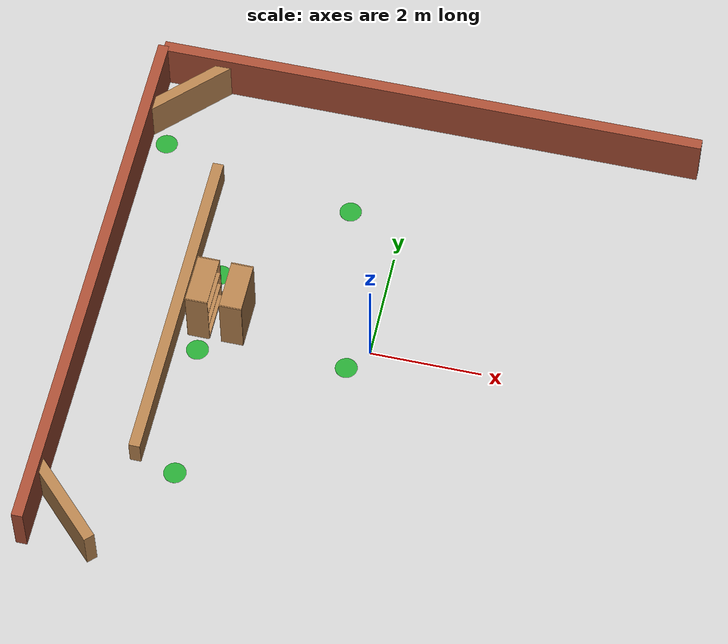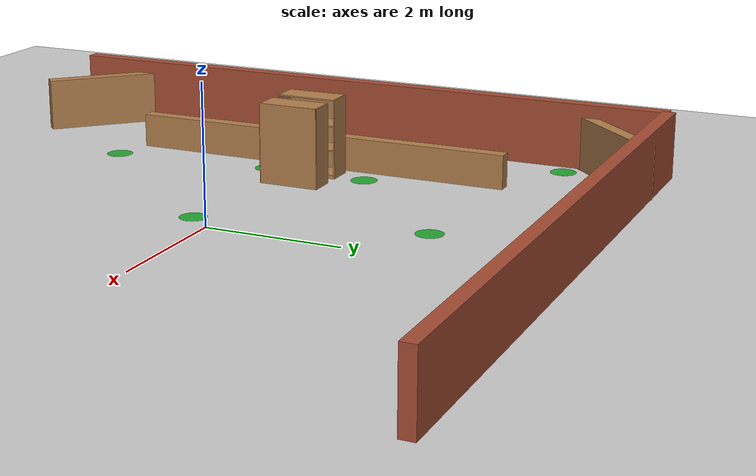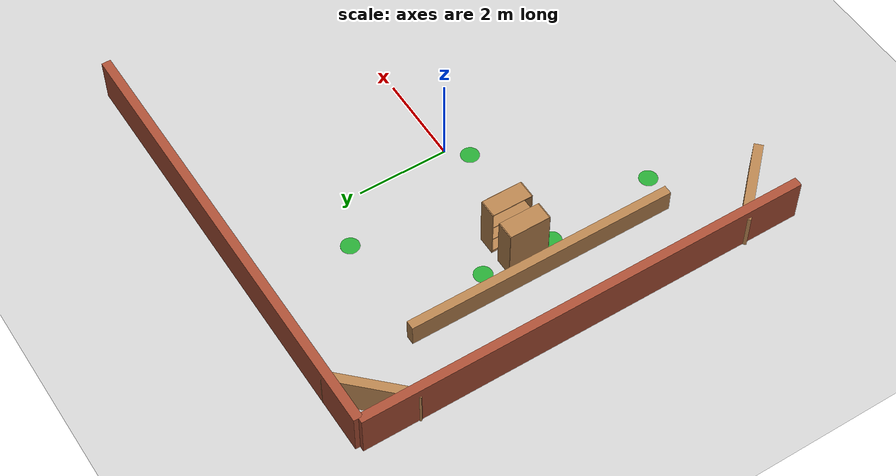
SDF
<sdf version="1.7">
 <world name="default">
  <model name="ground_plane">
   <static>1</static>
   <link name="link">
    <collision name="collision">
     <geometry><plane><normal>0 0 1</normal><size>100 100</size></plane></geometry>
     <surface><friction><ode><mu>100</mu><mu2>50</mu2></ode></friction></surface>
    </collision>
    <visual name="visual">
     <cast_shadows>0</cast_shadows>
     <geometry><plane><normal>0 0 1</normal><size>100 100</size></plane></geometry>
     <material>
      <script><uri>file://media/materials/scripts/gazebo.material</uri><name>Gazebo/Grey</name></script>
     </material>
    </visual>
   </link>
  </model>
  <model name="brick_wall">
   <link name="link_4">
    <inertial><mass>1</mass></inertial>
    <visual name="visual">
     <geometry><box><size>10 0.2 1</size></box></geometry>
     <material>
      <lighting>1</lighting>
      <script><uri>file://media/materials/scripts/gazebo.material</uri><name>Gazebo/Bricks</name></script>
      <shader type="pixel"><normal_map>__default__</normal_map></shader>
      <ambient>1 1 1 1</ambient>
      <diffuse>1 1 1 1</diffuse>
      <specular>0.2 0.2 0.2 1</specular>
      <emissive>0 0 0 1</emissive>
     </material>
    </visual>
    <collision name="collision"><geometry><box><size>10 0.2 1</size></box></geometry></collision>
   </link>
   <static>1</static>
   <pose>-0 5 0.5 0 -0 0</pose>
  </model>
  <model name="brick_wall_1">
   <link name="link_4">
    <inertial><mass>1</mass></inertial>
    <visual name="visual">
     <geometry><box><size>10 0.2 1</size></box></geometry>
     <material>
      <lighting>1</lighting>
      <script><uri>file://media/materials/scripts/gazebo.material</uri><name>Gazebo/Bricks</name></script>
      <shader type="pixel"><normal_map>__default__</normal_map></shader>
      <ambient>1 1 1 1</ambient>
      <diffuse>1 1 1 1</diffuse>
      <specular>0.2 0.2 0.2 1</specular>
      <emissive>0 0 0 1</emissive>
     </material>
    </visual>
    <collision name="collision"><geometry><box><size>10 0.2 1</size></box></geometry></collision>
   </link>
   <static>1</static>
   <pose>-5 0 0.5 0 0 -1.56843</pose>
  </model>
  <model name="wood_corner_0">
   <link name="link_5">
    <inertial><mass>0</mass></inertial>
    <pose>-0 0 0 0 -0 0.785</pose>
    <visual name="visual">
     <geometry><box><size>0.2 1.9 1</size></box></geometry>
     <material>
      <lighting>1</lighting>
      <script><uri>file://media/materials/scripts/gazebo.material</uri><name>Gazebo/Wood</name></script>
      <shader type="pixel"><normal_map>__default__</normal_map></shader>
      <ambient>0.3 0.3 0.3 1</ambient>
      <diffuse>0.7 0.7 0.7 1</diffuse>
      <specular>0.01 0.01 0.01 1</specular>
      <emissive>0 0 0 1</emissive>
     </material>
    </visual>
    <collision name="collision"><geometry><box><size>0.2 1.9 1</size></box></geometry></collision>
   </link>
   <static>1</static>
   <pose>-4.40116 4.36048 0.3 0 0 -1.56218</pose>
  </model>
  <model name="wood_corner_1">
   <link name="link_5">
    <inertial><mass>0</mass></inertial>
    <pose>-0 0 0 0 -0 0.785</pose>
    <visual name="visual">
     <geometry><box><size>0.2 1.9 1</size></box></geometry>
     <material>
      <lighting>1</lighting>
      <script><uri>file://media/materials/scripts/gazebo.material</uri><name>Gazebo/Wood</name></script>
      <shader type="pixel"><normal_map>__default__</normal_map></shader>
      <ambient>0.3 0.3 0.3 1</ambient>
      <diffuse>0.7 0.7 0.7 1</diffuse>
      <specular>0.01 0.01 0.01 1</specular>
      <emissive>0 0 0 1</emissive>
     </material>
    </visual>
    <collision name="collision"><geometry><box><size>0.2 1.9 1</size></box></geometry></collision>
   </link>
   <static>1</static>
   <pose>-4.40116 -4.36048 0.3 0 -0 0</pose>
  </model>
  <model name="parting_wood_wall">
   <link name="link_0">
    <visual name="visual">
     <geometry><box><size>0.2 6 1</size></box></geometry>
     <material>
      <lighting>1</lighting>
      <script><uri>file://media/materials/scripts/gazebo.material</uri><name>Gazebo/Wood</name></script>
      <shader type="pixel"><normal_map>__default__</normal_map></shader>
      <ambient>1 1 1 1</ambient>
      <diffuse>1 1 1 1</diffuse>
      <specular>0.2 0.2 0.2 1</specular>
      <emissive>0 0 0 1</emissive>
     </material>
    </visual>
    <collision name="collision"><geometry><box><size>0.2 6 1</size></box></geometry></collision>
   </link>
   <static>1</static>
   <pose>-3.5 0 0 0 -0 0</pose>
  </model>
  <model name="bookshelfs_0">
   <model name="bookshelf">
    <static>1</static>
    <link name="link">
     <inertial><mass>1</mass></inertial>
     <collision name="back">
      <pose>0 0.005 0.6 0 -0 0</pose>
      <geometry><box><size>0.9 0.01 1.2</size></box></geometry>
     </collision>
     <visual name="visual1">
      <pose>0 0.005 0.6 0 -0 0</pose>
      <geometry><box><size>0.9 0.01 1.2</size></box></geometry>
      <material>
       <script><uri>file://media/materials/scripts/gazebo.material</uri><name>Gazebo/Wood</name></script>
      </material>
     </visual>
     <collision name="left_side">
      <pose>0.45 -0.195 0.6 0 -0 0</pose>
      <geometry><box><size>0.02 0.4 1.2</size></box></geometry>
     </collision>
     <visual name="visual2">
      <pose>0.45 -0.195 0.6 0 -0 0</pose>
      <geometry><box><size>0.02 0.4 1.2</size></box></geometry>
      <material>
       <script><uri>file://media/materials/scripts/gazebo.material</uri><name>Gazebo/Wood</name></script>
      </material>
     </visual>
     <collision name="right_side">
      <pose>-0.45 -0.195 0.6 0 -0 0</pose>
      <geometry><box><size>0.02 0.4 1.2</size></box></geometry>
     </collision>
     <visual name="visual3">
      <pose>-0.45 -0.195 0.6 0 -0 0</pose>
      <geometry><box><size>0.02 0.4 1.2</size></box></geometry>
      <material>
       <script><uri>file://media/materials/scripts/gazebo.material</uri><name>Gazebo/Wood</name></script>
      </material>
     </visual>
     <collision name="bottom">
      <pose>0 -0.195 0.03 0 -0 0</pose>
      <geometry><box><size>0.88 0.4 0.06</size></box></geometry>
     </collision>
     <visual name="visual4">
      <pose>0 -0.195 0.03 0 -0 0</pose>
      <geometry><box><size>0.88 0.4 0.06</size></box></geometry>
      <material>
       <script><uri>file://media/materials/scripts/gazebo.material</uri><name>Gazebo/Wood</name></script>
      </material>
     </visual>
     <collision name="top">
      <pose>0 -0.195 1.19 0 -0 0</pose>
      <geometry><box><size>0.88 0.4 0.02</size></box></geometry>
     </collision>
     <visual name="visual5">
      <pose>0 -0.195 1.19 0 -0 0</pose>
      <geometry><box><size>0.88 0.4 0.02</size></box></geometry>
      <material>
       <script><uri>file://media/materials/scripts/gazebo.material</uri><name>Gazebo/Wood</name></script>
      </material>
     </visual>
     <collision name="low_shelf">
      <pose>0 -0.195 0.43 0 -0 0</pose>
      <geometry><box><size>0.88 0.4 0.02</size></box></geometry>
     </collision>
     <visual name="visual6">
      <pose>0 -0.195 0.43 0 -0 0</pose>
      <geometry><box><size>0.88 0.4 0.02</size></box></geometry>
      <material>
       <script><uri>file://media/materials/scripts/gazebo.material</uri><name>Gazebo/Wood</name></script>
      </material>
     </visual>
     <collision name="high_shelf">
      <pose>0 -0.195 0.8 0 -0 0</pose>
      <geometry><box><size>0.88 0.4 0.02</size></box></geometry>
     </collision>
     <visual name="visual7">
      <pose>0 -0.195 0.8 0 -0 0</pose>
      <geometry><box><size>0.88 0.4 0.02</size></box></geometry>
      <material>
       <script><uri>file://media/materials/scripts/gazebo.material</uri><name>Gazebo/Wood</name></script>
      </material>
     </visual>
    </link>
    <pose>-0 0.5 0 0 -0 0</pose>
   </model>
   <model name="bookshelf_0">
    <static>1</static>
    <link name="link">
     <inertial><mass>1</mass></inertial>
     <collision name="back">
      <pose>0 0.005 0.6 0 -0 0</pose>
      <geometry><box><size>0.9 0.01 1.2</size></box></geometry>
     </collision>
     <visual name="visual1">
      <pose>0 0.005 0.6 0 -0 0</pose>
      <geometry><box><size>0.9 0.01 1.2</size></box></geometry>
      <material>
       <script><uri>file://media/materials/scripts/gazebo.material</uri><name>Gazebo/Wood</name></script>
      </material>
     </visual>
     <collision name="left_side">
      <pose>0.45 -0.195 0.6 0 -0 0</pose>
      <geometry><box><size>0.02 0.4 1.2</size></box></geometry>
     </collision>
     <visual name="visual2">
      <pose>0.45 -0.195 0.6 0 -0 0</pose>
      <geometry><box><size>0.02 0.4 1.2</size></box></geometry>
      <material>
       <script><uri>file://media/materials/scripts/gazebo.material</uri><name>Gazebo/Wood</name></script>
      </material>
     </visual>
     <collision name="right_side">
      <pose>-0.45 -0.195 0.6 0 -0 0</pose>
      <geometry><box><size>0.02 0.4 1.2</size></box></geometry>
     </collision>
     <visual name="visual3">
      <pose>-0.45 -0.195 0.6 0 -0 0</pose>
      <geometry><box><size>0.02 0.4 1.2</size></box></geometry>
      <material>
       <script><uri>file://media/materials/scripts/gazebo.material</uri><name>Gazebo/Wood</name></script>
      </material>
     </visual>
     <collision name="bottom">
      <pose>0 -0.195 0.03 0 -0 0</pose>
      <geometry><box><size>0.88 0.4 0.06</size></box></geometry>
     </collision>
     <visual name="visual4">
      <pose>0 -0.195 0.03 0 -0 0</pose>
      <geometry><box><size>0.88 0.4 0.06</size></box></geometry>
      <material>
       <script><uri>file://media/materials/scripts/gazebo.material</uri><name>Gazebo/Wood</name></script>
      </material>
     </visual>
     <collision name="top">
      <pose>0 -0.195 1.19 0 -0 0</pose>
      <geometry><box><size>0.88 0.4 0.02</size></box></geometry>
     </collision>
     <visual name="visual5">
      <pose>0 -0.195 1.19 0 -0 0</pose>
      <geometry><box><size>0.88 0.4 0.02</size></box></geometry>
      <material>
       <script><uri>file://media/materials/scripts/gazebo.material</uri><name>Gazebo/Wood</name></script>
      </material>
     </visual>
     <collision name="low_shelf">
      <pose>0 -0.195 0.43 0 -0 0</pose>
      <geometry><box><size>0.88 0.4 0.02</size></box></geometry>
     </collision>
     <visual name="visual6">
      <pose>0 -0.195 0.43 0 -0 0</pose>
      <geometry><box><size>0.88 0.4 0.02</size></box></geometry>
      <material>
       <script><uri>file://media/materials/scripts/gazebo.material</uri><name>Gazebo/Wood</name></script>
      </material>
     </visual>
     <collision name="high_shelf">
      <pose>0 -0.195 0.8 0 -0 0</pose>
      <geometry><box><size>0.88 0.4 0.02</size></box></geometry>
     </collision>
     <visual name="visual7">
      <pose>0 -0.195 0.8 0 -0 0</pose>
      <geometry><box><size>0.88 0.4 0.02</size></box></geometry>
      <material>
       <script><uri>file://media/materials/scripts/gazebo.material</uri><name>Gazebo/Wood</name></script>
      </material>
     </visual>
    </link>
    <pose>0 -0.5 0 0 -0 3.14159</pose>
   </model>
   <static>1</static>
   <pose>-2.73623 0.117823 0 0 -0 -1.57215</pose>
  </model>
  <model name="goal_pad">
   <link name="link_0">
    <visual name="visual">
     <geometry><cylinder><radius>0.2</radius><length>0.001</length></cylinder></geometry>
     <material>
      <lighting>1</lighting>
      <script><uri>file://media/materials/scripts/gazebo.material</uri><name>Gazebo/Green</name></script>
      <shader type="pixel"><normal_map>__default__</normal_map></shader>
      <ambient>0 1 0 1</ambient>
      <diffuse>0 1 0 1</diffuse>
      <specular>0.1 0.1 0.1 1</specular>
      <emissive>0 0 0 1</emissive>
     </material>
    </visual>
    <collision name="collision">
     <geometry><cylinder><radius>0.2</radius><length>0.001</length></cylinder></geometry>
    </collision>
   </link>
   <static>1</static>
   <pose>-4.62856 3.53907 0 0 -0 0</pose>
  </model>
  <model name="goal_pad_1">
   <link name="link_0">
    <visual name="visual">
     <geometry><cylinder><radius>0.2</radius><length>0.001</length></cylinder></geometry>
     <material>
      <lighting>1</lighting>
      <script><uri>file://media/materials/scripts/gazebo.material</uri><name>Gazebo/Green</name></script>
      <shader type="pixel"><normal_map>__default__</normal_map></shader>
      <ambient>0 1 0 1</ambient>
      <diffuse>0 1 0 1</diffuse>
      <specular>0.1 0.1 0.1 1</specular>
      <emissive>0 0 0 1</emissive>
     </material>
    </visual>
    <collision name="collision">
     <geometry><cylinder><radius>0.2</radius><length>0.001</length></cylinder></geometry>
    </collision>
   </link>
   <static>1</static>
   <pose>-2.77242 -3.09679 0 0 -0 0</pose>
  </model>
  <model name="goal_pad_2">
   <link name="link_0">
    <visual name="visual">
     <geometry><cylinder><radius>0.2</radius><length>0.001</length></cylinder></geometry>
     <material>
      <lighting>1</lighting>
      <script><uri>file://media/materials/scripts/gazebo.material</uri><name>Gazebo/Green</name></script>
      <shader type="pixel"><normal_map>__default__</normal_map></shader>
      <ambient>0 1 0 1</ambient>
      <diffuse>0 1 0 1</diffuse>
      <specular>0.1 0.1 0.1 1</specular>
      <emissive>0 0 0 1</emissive>
     </material>
    </visual>
    <collision name="collision">
     <geometry><cylinder><radius>0.2</radius><length>0.001</length></cylinder></geometry>
    </collision>
   </link>
   <static>1</static>
   <pose>-2.97355 1.00 0 0 -0 0</pose>
  </model>
  <model name="goal_pad_3">
   <link name="link_0">
    <visual name="visual">
     <geometry><cylinder><radius>0.2</radius><length>0.001</length></cylinder></geometry>
     <material>
      <lighting>1</lighting>
      <script><uri>file://media/materials/scripts/gazebo.material</uri><name>Gazebo/Green</name></script>
      <shader type="pixel"><normal_map>__default__</normal_map></shader>
      <ambient>0 1 0 1</ambient>
      <diffuse>0 1 0 1</diffuse>
      <specular>0.1 0.1 0.1 1</specular>
      <emissive>0 0 0 1</emissive>
     </material>
    </visual>
    <collision name="collision">
     <geometry><cylinder><radius>0.2</radius><length>0.001</length></cylinder></geometry>
    </collision>
   </link>
   <static>1</static>
   <pose>-3.00 -0.604 0 0 -0 0</pose>
  </model>
  <model name="goal_pad_6">
   <link name="link_0">
    <visual name="visual">
     <geometry><cylinder><radius>0.2</radius><length>0.001</length></cylinder></geometry>
     <material>
      <lighting>1</lighting>
      <script><uri>file://media/materials/scripts/gazebo.material</uri><name>Gazebo/Green</name></script>
      <shader type="pixel"><normal_map>__default__</normal_map></shader>
      <ambient>0 1 0 1</ambient>
      <diffuse>0 1 0 1</diffuse>
      <specular>0.1 0.1 0.1 1</specular>
      <emissive>0 0 0 1</emissive>
     </material>
    </visual>
    <collision name="collision">
     <geometry><cylinder><radius>0.2</radius><length>0.001</length></cylinder></geometry>
    </collision>
   </link>
   <static>1</static>
   <pose>-1 2.83 0 0 -0 0</pose>
  </model>
  <model name="goal_pad_7">
   <link name="link_0">
    <visual name="visual">
     <geometry><cylinder><radius>0.2</radius><length>0.001</length></cylinder></geometry>
     <material>
      <lighting>1</lighting>
      <script><uri>file://media/materials/scripts/gazebo.material</uri><name>Gazebo/Green</name></script>
      <shader type="pixel"><normal_map>__default__</normal_map></shader>
      <ambient>0 1 0 1</ambient>
      <diffuse>0 1 0 1</diffuse>
      <specular>0.1 0.1 0.1 1</specular>
      <emissive>0 0 0 1</emissive>
     </material>
    </visual>
    <collision name="collision">
     <geometry><cylinder><radius>0.2</radius><length>0.001</length></cylinder></geometry>
    </collision>
   </link>
   <static>1</static>
   <pose>-0.347 -0.3895 0 0 -0 0</pose>
  </model>
 </world>
</sdf>
